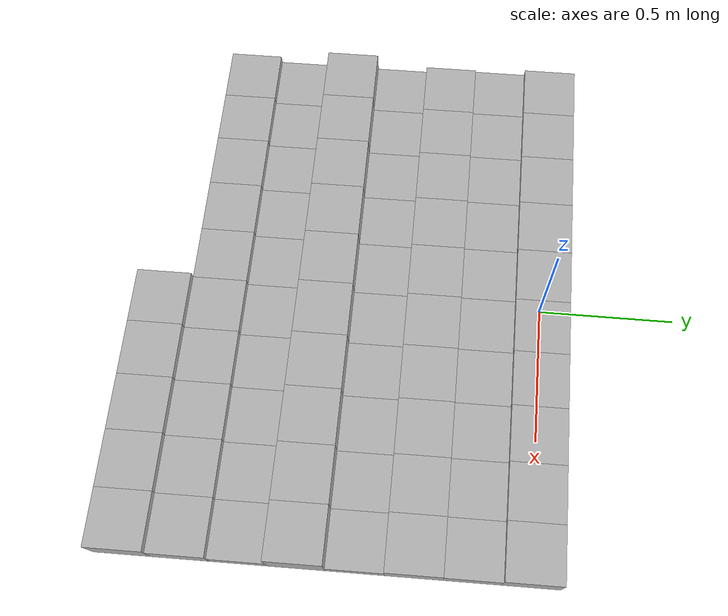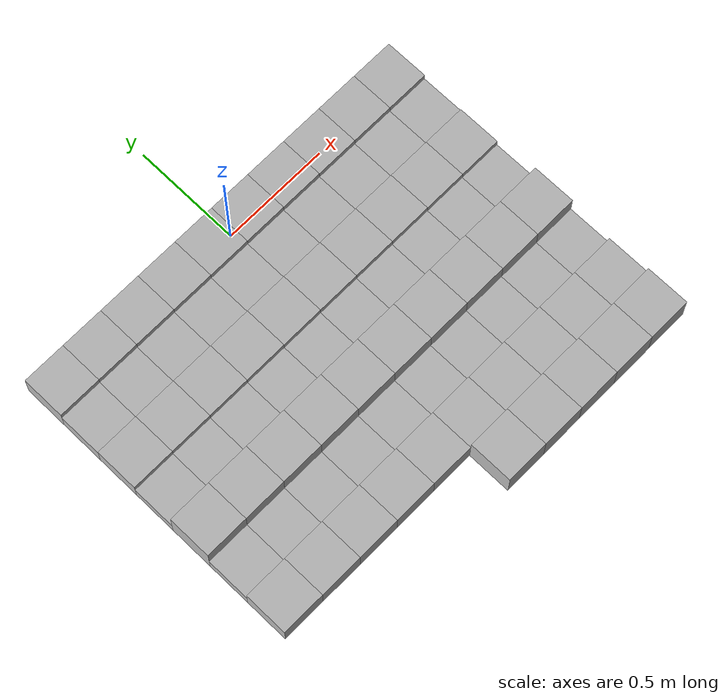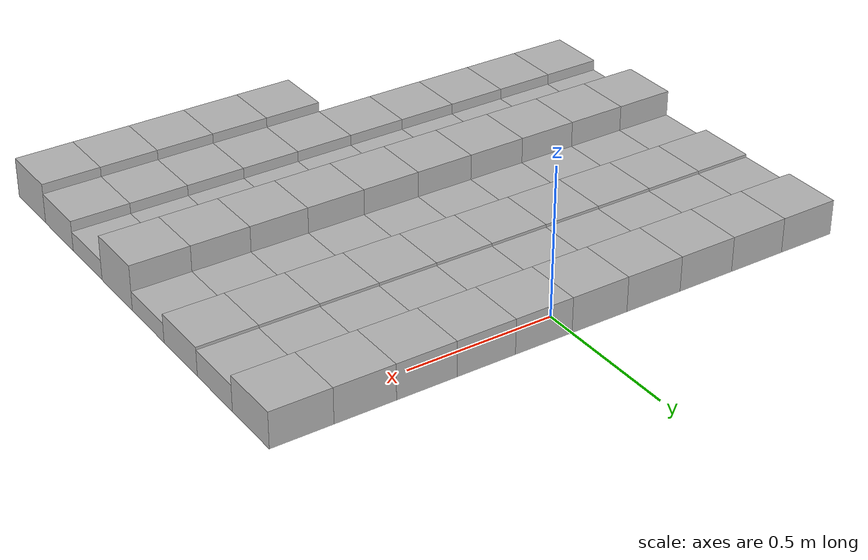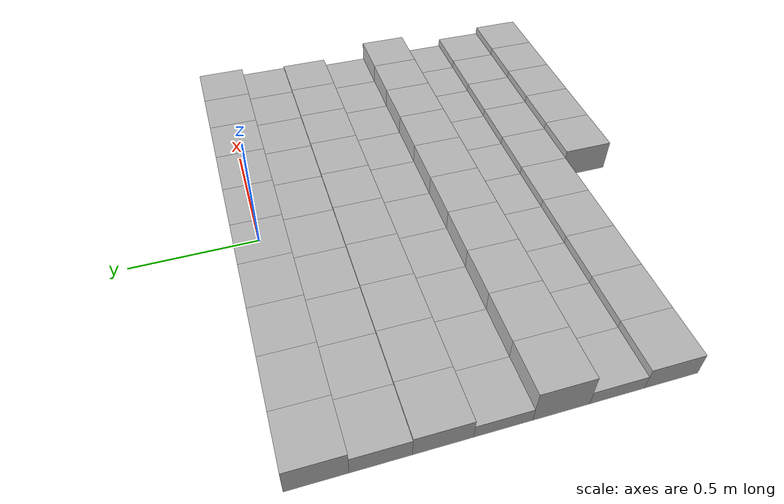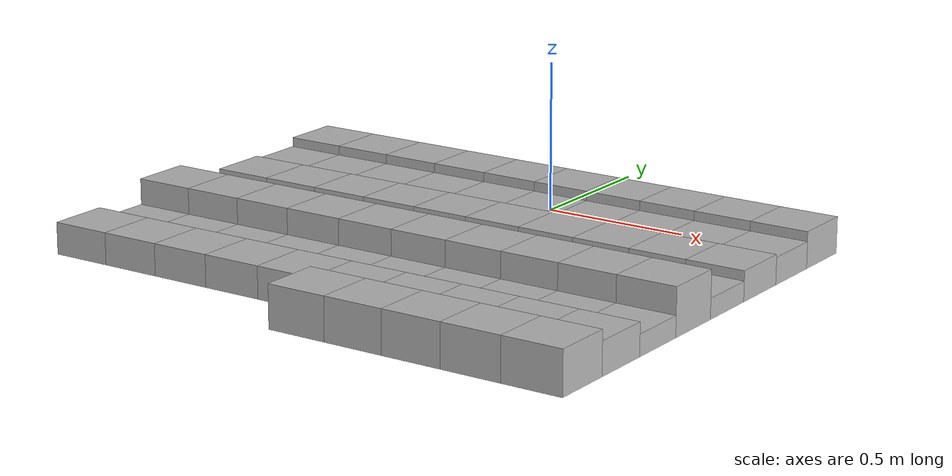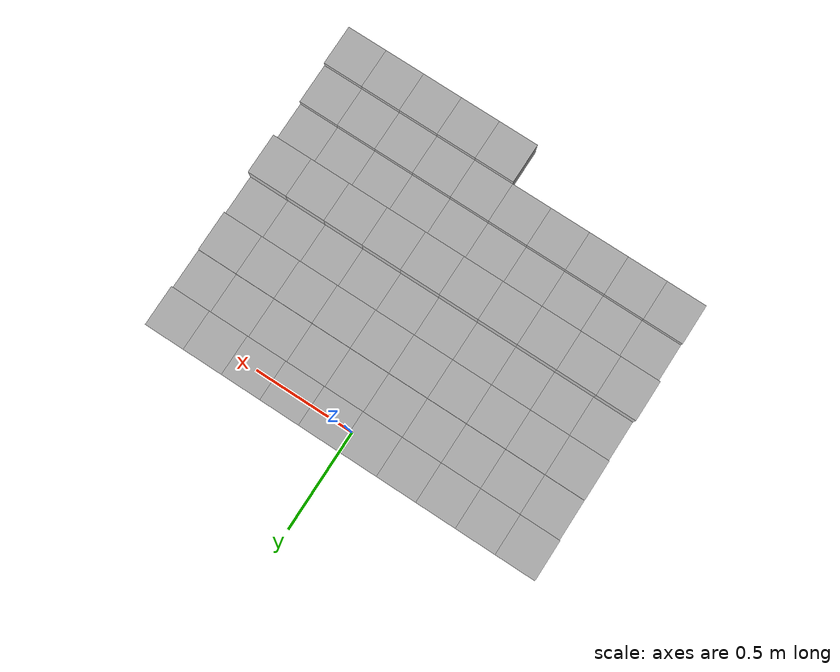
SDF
<sdf version="1.6">
 <model name="Terrain">
  <static>true</static>
  <link name="box_0_0">
   <pose>-0.9 0.0 0.0598560563841 0 0 0</pose>
   <inertial>
    <mass>1.0</mass>
    <inertia><ixx>0.0</ixx><ixy>0.0</ixy><ixz>0.0</ixz><iyy>0.0</iyy><iyz>0.0</iyz><izz>0.0</izz></inertia>
   </inertial>
   <collision name="collision"><geometry><box><size>0.2 0.2 0.119712112768</size></box></geometry></collision>
   <visual name="visual"><geometry><box><size>0.2 0.2 0.119712112768</size></box></geometry></visual>
  </link>
  <link name="box_0_1">
   <pose>-0.7 0.0 0.0598560563841 0 0 0</pose>
   <inertial>
    <mass>1.0</mass>
    <inertia><ixx>0.0</ixx><ixy>0.0</ixy><ixz>0.0</ixz><iyy>0.0</iyy><iyz>0.0</iyz><izz>0.0</izz></inertia>
   </inertial>
   <collision name="collision"><geometry><box><size>0.2 0.2 0.119712112768</size></box></geometry></collision>
   <visual name="visual"><geometry><box><size>0.2 0.2 0.119712112768</size></box></geometry></visual>
  </link>
  <link name="box_0_2">
   <pose>-0.5 0.0 0.0598560563841 0 0 0</pose>
   <inertial>
    <mass>1.0</mass>
    <inertia><ixx>0.0</ixx><ixy>0.0</ixy><ixz>0.0</ixz><iyy>0.0</iyy><iyz>0.0</iyz><izz>0.0</izz></inertia>
   </inertial>
   <collision name="collision"><geometry><box><size>0.2 0.2 0.119712112768</size></box></geometry></collision>
   <visual name="visual"><geometry><box><size>0.2 0.2 0.119712112768</size></box></geometry></visual>
  </link>
  <link name="box_0_3">
   <pose>-0.3 0.0 0.0598560563841 0 0 0</pose>
   <inertial>
    <mass>1.0</mass>
    <inertia><ixx>0.0</ixx><ixy>0.0</ixy><ixz>0.0</ixz><iyy>0.0</iyy><iyz>0.0</iyz><izz>0.0</izz></inertia>
   </inertial>
   <collision name="collision"><geometry><box><size>0.2 0.2 0.119712112768</size></box></geometry></collision>
   <visual name="visual"><geometry><box><size>0.2 0.2 0.119712112768</size></box></geometry></visual>
  </link>
  <link name="box_0_4">
   <pose>-0.1 0.0 0.0598560563841 0 0 0</pose>
   <inertial>
    <mass>1.0</mass>
    <inertia><ixx>0.0</ixx><ixy>0.0</ixy><ixz>0.0</ixz><iyy>0.0</iyy><iyz>0.0</iyz><izz>0.0</izz></inertia>
   </inertial>
   <collision name="collision"><geometry><box><size>0.2 0.2 0.119712112768</size></box></geometry></collision>
   <visual name="visual"><geometry><box><size>0.2 0.2 0.119712112768</size></box></geometry></visual>
  </link>
  <link name="box_0_5">
   <pose>0.1 0.0 0.0598560563841 0 0 0</pose>
   <inertial>
    <mass>1.0</mass>
    <inertia><ixx>0.0</ixx><ixy>0.0</ixy><ixz>0.0</ixz><iyy>0.0</iyy><iyz>0.0</iyz><izz>0.0</izz></inertia>
   </inertial>
   <collision name="collision"><geometry><box><size>0.2 0.2 0.119712112768</size></box></geometry></collision>
   <visual name="visual"><geometry><box><size>0.2 0.2 0.119712112768</size></box></geometry></visual>
  </link>
  <link name="box_0_6">
   <pose>0.3 0.0 0.0598560563841 0 0 0</pose>
   <inertial>
    <mass>1.0</mass>
    <inertia><ixx>0.0</ixx><ixy>0.0</ixy><ixz>0.0</ixz><iyy>0.0</iyy><iyz>0.0</iyz><izz>0.0</izz></inertia>
   </inertial>
   <collision name="collision"><geometry><box><size>0.2 0.2 0.119712112768</size></box></geometry></collision>
   <visual name="visual"><geometry><box><size>0.2 0.2 0.119712112768</size></box></geometry></visual>
  </link>
  <link name="box_0_7">
   <pose>0.5 0.0 0.0598560563841 0 0 0</pose>
   <inertial>
    <mass>1.0</mass>
    <inertia><ixx>0.0</ixx><ixy>0.0</ixy><ixz>0.0</ixz><iyy>0.0</iyy><iyz>0.0</iyz><izz>0.0</izz></inertia>
   </inertial>
   <collision name="collision"><geometry><box><size>0.2 0.2 0.119712112768</size></box></geometry></collision>
   <visual name="visual"><geometry><box><size>0.2 0.2 0.119712112768</size></box></geometry></visual>
  </link>
  <link name="box_0_8">
   <pose>0.7 0.0 0.0598560563841 0 0 0</pose>
   <inertial>
    <mass>1.0</mass>
    <inertia><ixx>0.0</ixx><ixy>0.0</ixy><ixz>0.0</ixz><iyy>0.0</iyy><iyz>0.0</iyz><izz>0.0</izz></inertia>
   </inertial>
   <collision name="collision"><geometry><box><size>0.2 0.2 0.119712112768</size></box></geometry></collision>
   <visual name="visual"><geometry><box><size>0.2 0.2 0.119712112768</size></box></geometry></visual>
  </link>
  <link name="box_0_9">
   <pose>0.9 0.0 0.0598560563841 0 0 0</pose>
   <inertial>
    <mass>1.0</mass>
    <inertia><ixx>0.0</ixx><ixy>0.0</ixy><ixz>0.0</ixz><iyy>0.0</iyy><iyz>0.0</iyz><izz>0.0</izz></inertia>
   </inertial>
   <collision name="collision"><geometry><box><size>0.2 0.2 0.119712112768</size></box></geometry></collision>
   <visual name="visual"><geometry><box><size>0.2 0.2 0.119712112768</size></box></geometry></visual>
  </link>
  <link name="box_1_0">
   <pose>-0.9 -0.2 0.0438637217113 0 0 0</pose>
   <inertial>
    <mass>1.0</mass>
    <inertia><ixx>0.0</ixx><ixy>0.0</ixy><ixz>0.0</ixz><iyy>0.0</iyy><iyz>0.0</iyz><izz>0.0</izz></inertia>
   </inertial>
   <collision name="collision"><geometry><box><size>0.2 0.2 0.0877274434227</size></box></geometry></collision>
   <visual name="visual"><geometry><box><size>0.2 0.2 0.0877274434227</size></box></geometry></visual>
  </link>
  <link name="box_1_1">
   <pose>-0.7 -0.2 0.0438637217113 0 0 0</pose>
   <inertial>
    <mass>1.0</mass>
    <inertia><ixx>0.0</ixx><ixy>0.0</ixy><ixz>0.0</ixz><iyy>0.0</iyy><iyz>0.0</iyz><izz>0.0</izz></inertia>
   </inertial>
   <collision name="collision"><geometry><box><size>0.2 0.2 0.0877274434227</size></box></geometry></collision>
   <visual name="visual"><geometry><box><size>0.2 0.2 0.0877274434227</size></box></geometry></visual>
  </link>
  <link name="box_1_2">
   <pose>-0.5 -0.2 0.0438637217113 0 0 0</pose>
   <inertial>
    <mass>1.0</mass>
    <inertia><ixx>0.0</ixx><ixy>0.0</ixy><ixz>0.0</ixz><iyy>0.0</iyy><iyz>0.0</iyz><izz>0.0</izz></inertia>
   </inertial>
   <collision name="collision"><geometry><box><size>0.2 0.2 0.0877274434227</size></box></geometry></collision>
   <visual name="visual"><geometry><box><size>0.2 0.2 0.0877274434227</size></box></geometry></visual>
  </link>
  <link name="box_1_3">
   <pose>-0.3 -0.2 0.0438637217113 0 0 0</pose>
   <inertial>
    <mass>1.0</mass>
    <inertia><ixx>0.0</ixx><ixy>0.0</ixy><ixz>0.0</ixz><iyy>0.0</iyy><iyz>0.0</iyz><izz>0.0</izz></inertia>
   </inertial>
   <collision name="collision"><geometry><box><size>0.2 0.2 0.0877274434227</size></box></geometry></collision>
   <visual name="visual"><geometry><box><size>0.2 0.2 0.0877274434227</size></box></geometry></visual>
  </link>
  <link name="box_1_4">
   <pose>-0.1 -0.2 0.0438637217113 0 0 0</pose>
   <inertial>
    <mass>1.0</mass>
    <inertia><ixx>0.0</ixx><ixy>0.0</ixy><ixz>0.0</ixz><iyy>0.0</iyy><iyz>0.0</iyz><izz>0.0</izz></inertia>
   </inertial>
   <collision name="collision"><geometry><box><size>0.2 0.2 0.0877274434227</size></box></geometry></collision>
   <visual name="visual"><geometry><box><size>0.2 0.2 0.0877274434227</size></box></geometry></visual>
  </link>
  <link name="box_1_5">
   <pose>0.1 -0.2 0.0438637217113 0 0 0</pose>
   <inertial>
    <mass>1.0</mass>
    <inertia><ixx>0.0</ixx><ixy>0.0</ixy><ixz>0.0</ixz><iyy>0.0</iyy><iyz>0.0</iyz><izz>0.0</izz></inertia>
   </inertial>
   <collision name="collision"><geometry><box><size>0.2 0.2 0.0877274434227</size></box></geometry></collision>
   <visual name="visual"><geometry><box><size>0.2 0.2 0.0877274434227</size></box></geometry></visual>
  </link>
  <link name="box_1_6">
   <pose>0.3 -0.2 0.0438637217113 0 0 0</pose>
   <inertial>
    <mass>1.0</mass>
    <inertia><ixx>0.0</ixx><ixy>0.0</ixy><ixz>0.0</ixz><iyy>0.0</iyy><iyz>0.0</iyz><izz>0.0</izz></inertia>
   </inertial>
   <collision name="collision"><geometry><box><size>0.2 0.2 0.0877274434227</size></box></geometry></collision>
   <visual name="visual"><geometry><box><size>0.2 0.2 0.0877274434227</size></box></geometry></visual>
  </link>
  <link name="box_1_7">
   <pose>0.5 -0.2 0.0438637217113 0 0 0</pose>
   <inertial>
    <mass>1.0</mass>
    <inertia><ixx>0.0</ixx><ixy>0.0</ixy><ixz>0.0</ixz><iyy>0.0</iyy><iyz>0.0</iyz><izz>0.0</izz></inertia>
   </inertial>
   <collision name="collision"><geometry><box><size>0.2 0.2 0.0877274434227</size></box></geometry></collision>
   <visual name="visual"><geometry><box><size>0.2 0.2 0.0877274434227</size></box></geometry></visual>
  </link>
  <link name="box_1_8">
   <pose>0.7 -0.2 0.0438637217113 0 0 0</pose>
   <inertial>
    <mass>1.0</mass>
    <inertia><ixx>0.0</ixx><ixy>0.0</ixy><ixz>0.0</ixz><iyy>0.0</iyy><iyz>0.0</iyz><izz>0.0</izz></inertia>
   </inertial>
   <collision name="collision"><geometry><box><size>0.2 0.2 0.0877274434227</size></box></geometry></collision>
   <visual name="visual"><geometry><box><size>0.2 0.2 0.0877274434227</size></box></geometry></visual>
  </link>
  <link name="box_1_9">
   <pose>0.9 -0.2 0.0438637217113 0 0 0</pose>
   <inertial>
    <mass>1.0</mass>
    <inertia><ixx>0.0</ixx><ixy>0.0</ixy><ixz>0.0</ixz><iyy>0.0</iyy><iyz>0.0</iyz><izz>0.0</izz></inertia>
   </inertial>
   <collision name="collision"><geometry><box><size>0.2 0.2 0.0877274434227</size></box></geometry></collision>
   <visual name="visual"><geometry><box><size>0.2 0.2 0.0877274434227</size></box></geometry></visual>
  </link>
  <link name="box_2_0">
   <pose>-0.9 -0.4 0.0486397680348 0 0 0</pose>
   <inertial>
    <mass>1.0</mass>
    <inertia><ixx>0.0</ixx><ixy>0.0</ixy><ixz>0.0</ixz><iyy>0.0</iyy><iyz>0.0</iyz><izz>0.0</izz></inertia>
   </inertial>
   <collision name="collision"><geometry><box><size>0.2 0.2 0.0972795360696</size></box></geometry></collision>
   <visual name="visual"><geometry><box><size>0.2 0.2 0.0972795360696</size></box></geometry></visual>
  </link>
  <link name="box_2_1">
   <pose>-0.7 -0.4 0.0486397680348 0 0 0</pose>
   <inertial>
    <mass>1.0</mass>
    <inertia><ixx>0.0</ixx><ixy>0.0</ixy><ixz>0.0</ixz><iyy>0.0</iyy><iyz>0.0</iyz><izz>0.0</izz></inertia>
   </inertial>
   <collision name="collision"><geometry><box><size>0.2 0.2 0.0972795360696</size></box></geometry></collision>
   <visual name="visual"><geometry><box><size>0.2 0.2 0.0972795360696</size></box></geometry></visual>
  </link>
  <link name="box_2_2">
   <pose>-0.5 -0.4 0.0486397680348 0 0 0</pose>
   <inertial>
    <mass>1.0</mass>
    <inertia><ixx>0.0</ixx><ixy>0.0</ixy><ixz>0.0</ixz><iyy>0.0</iyy><iyz>0.0</iyz><izz>0.0</izz></inertia>
   </inertial>
   <collision name="collision"><geometry><box><size>0.2 0.2 0.0972795360696</size></box></geometry></collision>
   <visual name="visual"><geometry><box><size>0.2 0.2 0.0972795360696</size></box></geometry></visual>
  </link>
  <link name="box_2_3">
   <pose>-0.3 -0.4 0.0486397680348 0 0 0</pose>
   <inertial>
    <mass>1.0</mass>
    <inertia><ixx>0.0</ixx><ixy>0.0</ixy><ixz>0.0</ixz><iyy>0.0</iyy><iyz>0.0</iyz><izz>0.0</izz></inertia>
   </inertial>
   <collision name="collision"><geometry><box><size>0.2 0.2 0.0972795360696</size></box></geometry></collision>
   <visual name="visual"><geometry><box><size>0.2 0.2 0.0972795360696</size></box></geometry></visual>
  </link>
  <link name="box_2_4">
   <pose>-0.1 -0.4 0.0486397680348 0 0 0</pose>
   <inertial>
    <mass>1.0</mass>
    <inertia><ixx>0.0</ixx><ixy>0.0</ixy><ixz>0.0</ixz><iyy>0.0</iyy><iyz>0.0</iyz><izz>0.0</izz></inertia>
   </inertial>
   <collision name="collision"><geometry><box><size>0.2 0.2 0.0972795360696</size></box></geometry></collision>
   <visual name="visual"><geometry><box><size>0.2 0.2 0.0972795360696</size></box></geometry></visual>
  </link>
  <link name="box_2_5">
   <pose>0.1 -0.4 0.0486397680348 0 0 0</pose>
   <inertial>
    <mass>1.0</mass>
    <inertia><ixx>0.0</ixx><ixy>0.0</ixy><ixz>0.0</ixz><iyy>0.0</iyy><iyz>0.0</iyz><izz>0.0</izz></inertia>
   </inertial>
   <collision name="collision"><geometry><box><size>0.2 0.2 0.0972795360696</size></box></geometry></collision>
   <visual name="visual"><geometry><box><size>0.2 0.2 0.0972795360696</size></box></geometry></visual>
  </link>
  <link name="box_2_6">
   <pose>0.3 -0.4 0.0486397680348 0 0 0</pose>
   <inertial>
    <mass>1.0</mass>
    <inertia><ixx>0.0</ixx><ixy>0.0</ixy><ixz>0.0</ixz><iyy>0.0</iyy><iyz>0.0</iyz><izz>0.0</izz></inertia>
   </inertial>
   <collision name="collision"><geometry><box><size>0.2 0.2 0.0972795360696</size></box></geometry></collision>
   <visual name="visual"><geometry><box><size>0.2 0.2 0.0972795360696</size></box></geometry></visual>
  </link>
  <link name="box_2_7">
   <pose>0.5 -0.4 0.0486397680348 0 0 0</pose>
   <inertial>
    <mass>1.0</mass>
    <inertia><ixx>0.0</ixx><ixy>0.0</ixy><ixz>0.0</ixz><iyy>0.0</iyy><iyz>0.0</iyz><izz>0.0</izz></inertia>
   </inertial>
   <collision name="collision"><geometry><box><size>0.2 0.2 0.0972795360696</size></box></geometry></collision>
   <visual name="visual"><geometry><box><size>0.2 0.2 0.0972795360696</size></box></geometry></visual>
  </link>
  <link name="box_2_8">
   <pose>0.7 -0.4 0.0486397680348 0 0 0</pose>
   <inertial>
    <mass>1.0</mass>
    <inertia><ixx>0.0</ixx><ixy>0.0</ixy><ixz>0.0</ixz><iyy>0.0</iyy><iyz>0.0</iyz><izz>0.0</izz></inertia>
   </inertial>
   <collision name="collision"><geometry><box><size>0.2 0.2 0.0972795360696</size></box></geometry></collision>
   <visual name="visual"><geometry><box><size>0.2 0.2 0.0972795360696</size></box></geometry></visual>
  </link>
  <link name="box_2_9">
   <pose>0.9 -0.4 0.0486397680348 0 0 0</pose>
   <inertial>
    <mass>1.0</mass>
    <inertia><ixx>0.0</ixx><ixy>0.0</ixy><ixz>0.0</ixz><iyy>0.0</iyy><iyz>0.0</iyz><izz>0.0</izz></inertia>
   </inertial>
   <collision name="collision"><geometry><box><size>0.2 0.2 0.0972795360696</size></box></geometry></collision>
   <visual name="visual"><geometry><box><size>0.2 0.2 0.0972795360696</size></box></geometry></visual>
  </link>
  <link name="box_3_0">
   <pose>-0.9 -0.6 0.0326591432274 0 0 0</pose>
   <inertial>
    <mass>1.0</mass>
    <inertia><ixx>0.0</ixx><ixy>0.0</ixy><ixz>0.0</ixz><iyy>0.0</iyy><iyz>0.0</iyz><izz>0.0</izz></inertia>
   </inertial>
   <collision name="collision"><geometry><box><size>0.2 0.2 0.0653182864547</size></box></geometry></collision>
   <visual name="visual"><geometry><box><size>0.2 0.2 0.0653182864547</size></box></geometry></visual>
  </link>
  <link name="box_3_1">
   <pose>-0.7 -0.6 0.0326591432274 0 0 0</pose>
   <inertial>
    <mass>1.0</mass>
    <inertia><ixx>0.0</ixx><ixy>0.0</ixy><ixz>0.0</ixz><iyy>0.0</iyy><iyz>0.0</iyz><izz>0.0</izz></inertia>
   </inertial>
   <collision name="collision"><geometry><box><size>0.2 0.2 0.0653182864547</size></box></geometry></collision>
   <visual name="visual"><geometry><box><size>0.2 0.2 0.0653182864547</size></box></geometry></visual>
  </link>
  <link name="box_3_2">
   <pose>-0.5 -0.6 0.0326591432274 0 0 0</pose>
   <inertial>
    <mass>1.0</mass>
    <inertia><ixx>0.0</ixx><ixy>0.0</ixy><ixz>0.0</ixz><iyy>0.0</iyy><iyz>0.0</iyz><izz>0.0</izz></inertia>
   </inertial>
   <collision name="collision"><geometry><box><size>0.2 0.2 0.0653182864547</size></box></geometry></collision>
   <visual name="visual"><geometry><box><size>0.2 0.2 0.0653182864547</size></box></geometry></visual>
  </link>
  <link name="box_3_3">
   <pose>-0.3 -0.6 0.0326591432274 0 0 0</pose>
   <inertial>
    <mass>1.0</mass>
    <inertia><ixx>0.0</ixx><ixy>0.0</ixy><ixz>0.0</ixz><iyy>0.0</iyy><iyz>0.0</iyz><izz>0.0</izz></inertia>
   </inertial>
   <collision name="collision"><geometry><box><size>0.2 0.2 0.0653182864547</size></box></geometry></collision>
   <visual name="visual"><geometry><box><size>0.2 0.2 0.0653182864547</size></box></geometry></visual>
  </link>
  <link name="box_3_4">
   <pose>-0.1 -0.6 0.0326591432274 0 0 0</pose>
   <inertial>
    <mass>1.0</mass>
    <inertia><ixx>0.0</ixx><ixy>0.0</ixy><ixz>0.0</ixz><iyy>0.0</iyy><iyz>0.0</iyz><izz>0.0</izz></inertia>
   </inertial>
   <collision name="collision"><geometry><box><size>0.2 0.2 0.0653182864547</size></box></geometry></collision>
   <visual name="visual"><geometry><box><size>0.2 0.2 0.0653182864547</size></box></geometry></visual>
  </link>
  <link name="box_3_5">
   <pose>0.1 -0.6 0.0326591432274 0 0 0</pose>
   <inertial>
    <mass>1.0</mass>
    <inertia><ixx>0.0</ixx><ixy>0.0</ixy><ixz>0.0</ixz><iyy>0.0</iyy><iyz>0.0</iyz><izz>0.0</izz></inertia>
   </inertial>
   <collision name="collision"><geometry><box><size>0.2 0.2 0.0653182864547</size></box></geometry></collision>
   <visual name="visual"><geometry><box><size>0.2 0.2 0.0653182864547</size></box></geometry></visual>
  </link>
  <link name="box_3_6">
   <pose>0.3 -0.6 0.0326591432274 0 0 0</pose>
   <inertial>
    <mass>1.0</mass>
    <inertia><ixx>0.0</ixx><ixy>0.0</ixy><ixz>0.0</ixz><iyy>0.0</iyy><iyz>0.0</iyz><izz>0.0</izz></inertia>
   </inertial>
   <collision name="collision"><geometry><box><size>0.2 0.2 0.0653182864547</size></box></geometry></collision>
   <visual name="visual"><geometry><box><size>0.2 0.2 0.0653182864547</size></box></geometry></visual>
  </link>
  <link name="box_3_7">
   <pose>0.5 -0.6 0.0326591432274 0 0 0</pose>
   <inertial>
    <mass>1.0</mass>
    <inertia><ixx>0.0</ixx><ixy>0.0</ixy><ixz>0.0</ixz><iyy>0.0</iyy><iyz>0.0</iyz><izz>0.0</izz></inertia>
   </inertial>
   <collision name="collision"><geometry><box><size>0.2 0.2 0.0653182864547</size></box></geometry></collision>
   <visual name="visual"><geometry><box><size>0.2 0.2 0.0653182864547</size></box></geometry></visual>
  </link>
  <link name="box_3_8">
   <pose>0.7 -0.6 0.0326591432274 0 0 0</pose>
   <inertial>
    <mass>1.0</mass>
    <inertia><ixx>0.0</ixx><ixy>0.0</ixy><ixz>0.0</ixz><iyy>0.0</iyy><iyz>0.0</iyz><izz>0.0</izz></inertia>
   </inertial>
   <collision name="collision"><geometry><box><size>0.2 0.2 0.0653182864547</size></box></geometry></collision>
   <visual name="visual"><geometry><box><size>0.2 0.2 0.0653182864547</size></box></geometry></visual>
  </link>
  <link name="box_3_9">
   <pose>0.9 -0.6 0.0326591432274 0 0 0</pose>
   <inertial>
    <mass>1.0</mass>
    <inertia><ixx>0.0</ixx><ixy>0.0</ixy><ixz>0.0</ixz><iyy>0.0</iyy><iyz>0.0</iyz><izz>0.0</izz></inertia>
   </inertial>
   <collision name="collision"><geometry><box><size>0.2 0.2 0.0653182864547</size></box></geometry></collision>
   <visual name="visual"><geometry><box><size>0.2 0.2 0.0653182864547</size></box></geometry></visual>
  </link>
  <link name="box_4_0">
   <pose>-0.9 -0.8 0.0769025275084 0 0 0</pose>
   <inertial>
    <mass>1.0</mass>
    <inertia><ixx>0.0</ixx><ixy>0.0</ixy><ixz>0.0</ixz><iyy>0.0</iyy><iyz>0.0</iyz><izz>0.0</izz></inertia>
   </inertial>
   <collision name="collision"><geometry><box><size>0.2 0.2 0.153805055017</size></box></geometry></collision>
   <visual name="visual"><geometry><box><size>0.2 0.2 0.153805055017</size></box></geometry></visual>
  </link>
  <link name="box_4_1">
   <pose>-0.7 -0.8 0.0769025275084 0 0 0</pose>
   <inertial>
    <mass>1.0</mass>
    <inertia><ixx>0.0</ixx><ixy>0.0</ixy><ixz>0.0</ixz><iyy>0.0</iyy><iyz>0.0</iyz><izz>0.0</izz></inertia>
   </inertial>
   <collision name="collision"><geometry><box><size>0.2 0.2 0.153805055017</size></box></geometry></collision>
   <visual name="visual"><geometry><box><size>0.2 0.2 0.153805055017</size></box></geometry></visual>
  </link>
  <link name="box_4_2">
   <pose>-0.5 -0.8 0.0769025275084 0 0 0</pose>
   <inertial>
    <mass>1.0</mass>
    <inertia><ixx>0.0</ixx><ixy>0.0</ixy><ixz>0.0</ixz><iyy>0.0</iyy><iyz>0.0</iyz><izz>0.0</izz></inertia>
   </inertial>
   <collision name="collision"><geometry><box><size>0.2 0.2 0.153805055017</size></box></geometry></collision>
   <visual name="visual"><geometry><box><size>0.2 0.2 0.153805055017</size></box></geometry></visual>
  </link>
  <link name="box_4_3">
   <pose>-0.3 -0.8 0.0769025275084 0 0 0</pose>
   <inertial>
    <mass>1.0</mass>
    <inertia><ixx>0.0</ixx><ixy>0.0</ixy><ixz>0.0</ixz><iyy>0.0</iyy><iyz>0.0</iyz><izz>0.0</izz></inertia>
   </inertial>
   <collision name="collision"><geometry><box><size>0.2 0.2 0.153805055017</size></box></geometry></collision>
   <visual name="visual"><geometry><box><size>0.2 0.2 0.153805055017</size></box></geometry></visual>
  </link>
  <link name="box_4_4">
   <pose>-0.1 -0.8 0.0769025275084 0 0 0</pose>
   <inertial>
    <mass>1.0</mass>
    <inertia><ixx>0.0</ixx><ixy>0.0</ixy><ixz>0.0</ixz><iyy>0.0</iyy><iyz>0.0</iyz><izz>0.0</izz></inertia>
   </inertial>
   <collision name="collision"><geometry><box><size>0.2 0.2 0.153805055017</size></box></geometry></collision>
   <visual name="visual"><geometry><box><size>0.2 0.2 0.153805055017</size></box></geometry></visual>
  </link>
  <link name="box_4_5">
   <pose>0.1 -0.8 0.0769025275084 0 0 0</pose>
   <inertial>
    <mass>1.0</mass>
    <inertia><ixx>0.0</ixx><ixy>0.0</ixy><ixz>0.0</ixz><iyy>0.0</iyy><iyz>0.0</iyz><izz>0.0</izz></inertia>
   </inertial>
   <collision name="collision"><geometry><box><size>0.2 0.2 0.153805055017</size></box></geometry></collision>
   <visual name="visual"><geometry><box><size>0.2 0.2 0.153805055017</size></box></geometry></visual>
  </link>
  <link name="box_4_6">
   <pose>0.3 -0.8 0.0769025275084 0 0 0</pose>
   <inertial>
    <mass>1.0</mass>
    <inertia><ixx>0.0</ixx><ixy>0.0</ixy><ixz>0.0</ixz><iyy>0.0</iyy><iyz>0.0</iyz><izz>0.0</izz></inertia>
   </inertial>
   <collision name="collision"><geometry><box><size>0.2 0.2 0.153805055017</size></box></geometry></collision>
   <visual name="visual"><geometry><box><size>0.2 0.2 0.153805055017</size></box></geometry></visual>
  </link>
  <link name="box_4_7">
   <pose>0.5 -0.8 0.0769025275084 0 0 0</pose>
   <inertial>
    <mass>1.0</mass>
    <inertia><ixx>0.0</ixx><ixy>0.0</ixy><ixz>0.0</ixz><iyy>0.0</iyy><iyz>0.0</iyz><izz>0.0</izz></inertia>
   </inertial>
   <collision name="collision"><geometry><box><size>0.2 0.2 0.153805055017</size></box></geometry></collision>
   <visual name="visual"><geometry><box><size>0.2 0.2 0.153805055017</size></box></geometry></visual>
  </link>
  <link name="box_4_8">
   <pose>0.7 -0.8 0.0769025275084 0 0 0</pose>
   <inertial>
    <mass>1.0</mass>
    <inertia><ixx>0.0</ixx><ixy>0.0</ixy><ixz>0.0</ixz><iyy>0.0</iyy><iyz>0.0</iyz><izz>0.0</izz></inertia>
   </inertial>
   <collision name="collision"><geometry><box><size>0.2 0.2 0.153805055017</size></box></geometry></collision>
   <visual name="visual"><geometry><box><size>0.2 0.2 0.153805055017</size></box></geometry></visual>
  </link>
  <link name="box_4_9">
   <pose>0.9 -0.8 0.0769025275084 0 0 0</pose>
   <inertial>
    <mass>1.0</mass>
    <inertia><ixx>0.0</ixx><ixy>0.0</ixy><ixz>0.0</ixz><iyy>0.0</iyy><iyz>0.0</iyz><izz>0.0</izz></inertia>
   </inertial>
   <collision name="collision"><geometry><box><size>0.2 0.2 0.153805055017</size></box></geometry></collision>
   <visual name="visual"><geometry><box><size>0.2 0.2 0.153805055017</size></box></geometry></visual>
  </link>
  <link name="box_5_0">
   <pose>-0.9 -1.0 0.0338521231126 0 0 0</pose>
   <inertial>
    <mass>1.0</mass>
    <inertia><ixx>0.0</ixx><ixy>0.0</ixy><ixz>0.0</ixz><iyy>0.0</iyy><iyz>0.0</iyz><izz>0.0</izz></inertia>
   </inertial>
   <collision name="collision"><geometry><box><size>0.2 0.2 0.0677042462252</size></box></geometry></collision>
   <visual name="visual"><geometry><box><size>0.2 0.2 0.0677042462252</size></box></geometry></visual>
  </link>
  <link name="box_5_1">
   <pose>-0.7 -1.0 0.0338521231126 0 0 0</pose>
   <inertial>
    <mass>1.0</mass>
    <inertia><ixx>0.0</ixx><ixy>0.0</ixy><ixz>0.0</ixz><iyy>0.0</iyy><iyz>0.0</iyz><izz>0.0</izz></inertia>
   </inertial>
   <collision name="collision"><geometry><box><size>0.2 0.2 0.0677042462252</size></box></geometry></collision>
   <visual name="visual"><geometry><box><size>0.2 0.2 0.0677042462252</size></box></geometry></visual>
  </link>
  <link name="box_5_2">
   <pose>-0.5 -1.0 0.0338521231126 0 0 0</pose>
   <inertial>
    <mass>1.0</mass>
    <inertia><ixx>0.0</ixx><ixy>0.0</ixy><ixz>0.0</ixz><iyy>0.0</iyy><iyz>0.0</iyz><izz>0.0</izz></inertia>
   </inertial>
   <collision name="collision"><geometry><box><size>0.2 0.2 0.0677042462252</size></box></geometry></collision>
   <visual name="visual"><geometry><box><size>0.2 0.2 0.0677042462252</size></box></geometry></visual>
  </link>
  <link name="box_5_3">
   <pose>-0.3 -1.0 0.0338521231126 0 0 0</pose>
   <inertial>
    <mass>1.0</mass>
    <inertia><ixx>0.0</ixx><ixy>0.0</ixy><ixz>0.0</ixz><iyy>0.0</iyy><iyz>0.0</iyz><izz>0.0</izz></inertia>
   </inertial>
   <collision name="collision"><geometry><box><size>0.2 0.2 0.0677042462252</size></box></geometry></collision>
   <visual name="visual"><geometry><box><size>0.2 0.2 0.0677042462252</size></box></geometry></visual>
  </link>
  <link name="box_5_4">
   <pose>-0.1 -1.0 0.0338521231126 0 0 0</pose>
   <inertial>
    <mass>1.0</mass>
    <inertia><ixx>0.0</ixx><ixy>0.0</ixy><ixz>0.0</ixz><iyy>0.0</iyy><iyz>0.0</iyz><izz>0.0</izz></inertia>
   </inertial>
   <collision name="collision"><geometry><box><size>0.2 0.2 0.0677042462252</size></box></geometry></collision>
   <visual name="visual"><geometry><box><size>0.2 0.2 0.0677042462252</size></box></geometry></visual>
  </link>
  <link name="box_5_5">
   <pose>0.1 -1.0 0.0338521231126 0 0 0</pose>
   <inertial>
    <mass>1.0</mass>
    <inertia><ixx>0.0</ixx><ixy>0.0</ixy><ixz>0.0</ixz><iyy>0.0</iyy><iyz>0.0</iyz><izz>0.0</izz></inertia>
   </inertial>
   <collision name="collision"><geometry><box><size>0.2 0.2 0.0677042462252</size></box></geometry></collision>
   <visual name="visual"><geometry><box><size>0.2 0.2 0.0677042462252</size></box></geometry></visual>
  </link>
  <link name="box_5_6">
   <pose>0.3 -1.0 0.0338521231126 0 0 0</pose>
   <inertial>
    <mass>1.0</mass>
    <inertia><ixx>0.0</ixx><ixy>0.0</ixy><ixz>0.0</ixz><iyy>0.0</iyy><iyz>0.0</iyz><izz>0.0</izz></inertia>
   </inertial>
   <collision name="collision"><geometry><box><size>0.2 0.2 0.0677042462252</size></box></geometry></collision>
   <visual name="visual"><geometry><box><size>0.2 0.2 0.0677042462252</size></box></geometry></visual>
  </link>
  <link name="box_5_7">
   <pose>0.5 -1.0 0.0338521231126 0 0 0</pose>
   <inertial>
    <mass>1.0</mass>
    <inertia><ixx>0.0</ixx><ixy>0.0</ixy><ixz>0.0</ixz><iyy>0.0</iyy><iyz>0.0</iyz><izz>0.0</izz></inertia>
   </inertial>
   <collision name="collision"><geometry><box><size>0.2 0.2 0.0677042462252</size></box></geometry></collision>
   <visual name="visual"><geometry><box><size>0.2 0.2 0.0677042462252</size></box></geometry></visual>
  </link>
  <link name="box_5_8">
   <pose>0.7 -1.0 0.0338521231126 0 0 0</pose>
   <inertial>
    <mass>1.0</mass>
    <inertia><ixx>0.0</ixx><ixy>0.0</ixy><ixz>0.0</ixz><iyy>0.0</iyy><iyz>0.0</iyz><izz>0.0</izz></inertia>
   </inertial>
   <collision name="collision"><geometry><box><size>0.2 0.2 0.0677042462252</size></box></geometry></collision>
   <visual name="visual"><geometry><box><size>0.2 0.2 0.0677042462252</size></box></geometry></visual>
  </link>
  <link name="box_5_9">
   <pose>0.9 -1.0 0.0338521231126 0 0 0</pose>
   <inertial>
    <mass>1.0</mass>
    <inertia><ixx>0.0</ixx><ixy>0.0</ixy><ixz>0.0</ixz><iyy>0.0</iyy><iyz>0.0</iyz><izz>0.0</izz></inertia>
   </inertial>
   <collision name="collision"><geometry><box><size>0.2 0.2 0.0677042462252</size></box></geometry></collision>
   <visual name="visual"><geometry><box><size>0.2 0.2 0.0677042462252</size></box></geometry></visual>
  </link>
  <link name="box_6_0">
   <pose>-0.9 -1.2 0.0521194486497 0 0 0</pose>
   <inertial>
    <mass>1.0</mass>
    <inertia><ixx>0.0</ixx><ixy>0.0</ixy><ixz>0.0</ixz><iyy>0.0</iyy><iyz>0.0</iyz><izz>0.0</izz></inertia>
   </inertial>
   <collision name="collision"><geometry><box><size>0.2 0.2 0.104238897299</size></box></geometry></collision>
   <visual name="visual"><geometry><box><size>0.2 0.2 0.104238897299</size></box></geometry></visual>
  </link>
  <link name="box_6_1">
   <pose>-0.7 -1.2 0.0521194486497 0 0 0</pose>
   <inertial>
    <mass>1.0</mass>
    <inertia><ixx>0.0</ixx><ixy>0.0</ixy><ixz>0.0</ixz><iyy>0.0</iyy><iyz>0.0</iyz><izz>0.0</izz></inertia>
   </inertial>
   <collision name="collision"><geometry><box><size>0.2 0.2 0.104238897299</size></box></geometry></collision>
   <visual name="visual"><geometry><box><size>0.2 0.2 0.104238897299</size></box></geometry></visual>
  </link>
  <link name="box_6_2">
   <pose>-0.5 -1.2 0.0521194486497 0 0 0</pose>
   <inertial>
    <mass>1.0</mass>
    <inertia><ixx>0.0</ixx><ixy>0.0</ixy><ixz>0.0</ixz><iyy>0.0</iyy><iyz>0.0</iyz><izz>0.0</izz></inertia>
   </inertial>
   <collision name="collision"><geometry><box><size>0.2 0.2 0.104238897299</size></box></geometry></collision>
   <visual name="visual"><geometry><box><size>0.2 0.2 0.104238897299</size></box></geometry></visual>
  </link>
  <link name="box_6_3">
   <pose>-0.3 -1.2 0.0521194486497 0 0 0</pose>
   <inertial>
    <mass>1.0</mass>
    <inertia><ixx>0.0</ixx><ixy>0.0</ixy><ixz>0.0</ixz><iyy>0.0</iyy><iyz>0.0</iyz><izz>0.0</izz></inertia>
   </inertial>
   <collision name="collision"><geometry><box><size>0.2 0.2 0.104238897299</size></box></geometry></collision>
   <visual name="visual"><geometry><box><size>0.2 0.2 0.104238897299</size></box></geometry></visual>
  </link>
  <link name="box_6_4">
   <pose>-0.1 -1.2 0.0521194486497 0 0 0</pose>
   <inertial>
    <mass>1.0</mass>
    <inertia><ixx>0.0</ixx><ixy>0.0</ixy><ixz>0.0</ixz><iyy>0.0</iyy><iyz>0.0</iyz><izz>0.0</izz></inertia>
   </inertial>
   <collision name="collision"><geometry><box><size>0.2 0.2 0.104238897299</size></box></geometry></collision>
   <visual name="visual"><geometry><box><size>0.2 0.2 0.104238897299</size></box></geometry></visual>
  </link>
  <link name="box_6_5">
   <pose>0.1 -1.2 0.0521194486497 0 0 0</pose>
   <inertial>
    <mass>1.0</mass>
    <inertia><ixx>0.0</ixx><ixy>0.0</ixy><ixz>0.0</ixz><iyy>0.0</iyy><iyz>0.0</iyz><izz>0.0</izz></inertia>
   </inertial>
   <collision name="collision"><geometry><box><size>0.2 0.2 0.104238897299</size></box></geometry></collision>
   <visual name="visual"><geometry><box><size>0.2 0.2 0.104238897299</size></box></geometry></visual>
  </link>
  <link name="box_6_6">
   <pose>0.3 -1.2 0.0521194486497 0 0 0</pose>
   <inertial>
    <mass>1.0</mass>
    <inertia><ixx>0.0</ixx><ixy>0.0</ixy><ixz>0.0</ixz><iyy>0.0</iyy><iyz>0.0</iyz><izz>0.0</izz></inertia>
   </inertial>
   <collision name="collision"><geometry><box><size>0.2 0.2 0.104238897299</size></box></geometry></collision>
   <visual name="visual"><geometry><box><size>0.2 0.2 0.104238897299</size></box></geometry></visual>
  </link>
  <link name="box_6_7">
   <pose>0.5 -1.2 0.0521194486497 0 0 0</pose>
   <inertial>
    <mass>1.0</mass>
    <inertia><ixx>0.0</ixx><ixy>0.0</ixy><ixz>0.0</ixz><iyy>0.0</iyy><iyz>0.0</iyz><izz>0.0</izz></inertia>
   </inertial>
   <collision name="collision"><geometry><box><size>0.2 0.2 0.104238897299</size></box></geometry></collision>
   <visual name="visual"><geometry><box><size>0.2 0.2 0.104238897299</size></box></geometry></visual>
  </link>
  <link name="box_6_8">
   <pose>0.7 -1.2 0.0521194486497 0 0 0</pose>
   <inertial>
    <mass>1.0</mass>
    <inertia><ixx>0.0</ixx><ixy>0.0</ixy><ixz>0.0</ixz><iyy>0.0</iyy><iyz>0.0</iyz><izz>0.0</izz></inertia>
   </inertial>
   <collision name="collision"><geometry><box><size>0.2 0.2 0.104238897299</size></box></geometry></collision>
   <visual name="visual"><geometry><box><size>0.2 0.2 0.104238897299</size></box></geometry></visual>
  </link>
  <link name="box_6_9">
   <pose>0.9 -1.2 0.0521194486497 0 0 0</pose>
   <inertial>
    <mass>1.0</mass>
    <inertia><ixx>0.0</ixx><ixy>0.0</ixy><ixz>0.0</ixz><iyy>0.0</iyy><iyz>0.0</iyz><izz>0.0</izz></inertia>
   </inertial>
   <collision name="collision"><geometry><box><size>0.2 0.2 0.104238897299</size></box></geometry></collision>
   <visual name="visual"><geometry><box><size>0.2 0.2 0.104238897299</size></box></geometry></visual>
  </link>
  <link name="box_7_5">
   <pose>0.1 -1.4 0.0691178265774 0 0 0</pose>
   <inertial>
    <mass>1.0</mass>
    <inertia><ixx>0.0</ixx><ixy>0.0</ixy><ixz>0.0</ixz><iyy>0.0</iyy><iyz>0.0</iyz><izz>0.0</izz></inertia>
   </inertial>
   <collision name="collision"><geometry><box><size>0.2 0.2 0.138235653155</size></box></geometry></collision>
   <visual name="visual"><geometry><box><size>0.2 0.2 0.138235653155</size></box></geometry></visual>
  </link>
  <link name="box_7_6">
   <pose>0.3 -1.4 0.0691178265774 0 0 0</pose>
   <inertial>
    <mass>1.0</mass>
    <inertia><ixx>0.0</ixx><ixy>0.0</ixy><ixz>0.0</ixz><iyy>0.0</iyy><iyz>0.0</iyz><izz>0.0</izz></inertia>
   </inertial>
   <collision name="collision"><geometry><box><size>0.2 0.2 0.138235653155</size></box></geometry></collision>
   <visual name="visual"><geometry><box><size>0.2 0.2 0.138235653155</size></box></geometry></visual>
  </link>
  <link name="box_7_7">
   <pose>0.5 -1.4 0.0691178265774 0 0 0</pose>
   <inertial>
    <mass>1.0</mass>
    <inertia><ixx>0.0</ixx><ixy>0.0</ixy><ixz>0.0</ixz><iyy>0.0</iyy><iyz>0.0</iyz><izz>0.0</izz></inertia>
   </inertial>
   <collision name="collision"><geometry><box><size>0.2 0.2 0.138235653155</size></box></geometry></collision>
   <visual name="visual"><geometry><box><size>0.2 0.2 0.138235653155</size></box></geometry></visual>
  </link>
  <link name="box_7_8">
   <pose>0.7 -1.4 0.0691178265774 0 0 0</pose>
   <inertial>
    <mass>1.0</mass>
    <inertia><ixx>0.0</ixx><ixy>0.0</ixy><ixz>0.0</ixz><iyy>0.0</iyy><iyz>0.0</iyz><izz>0.0</izz></inertia>
   </inertial>
   <collision name="collision"><geometry><box><size>0.2 0.2 0.138235653155</size></box></geometry></collision>
   <visual name="visual"><geometry><box><size>0.2 0.2 0.138235653155</size></box></geometry></visual>
  </link>
  <link name="box_7_9">
   <pose>0.9 -1.4 0.0691178265774 0 0 0</pose>
   <inertial>
    <mass>1.0</mass>
    <inertia><ixx>0.0</ixx><ixy>0.0</ixy><ixz>0.0</ixz><iyy>0.0</iyy><iyz>0.0</iyz><izz>0.0</izz></inertia>
   </inertial>
   <collision name="collision"><geometry><box><size>0.2 0.2 0.138235653155</size></box></geometry></collision>
   <visual name="visual"><geometry><box><size>0.2 0.2 0.138235653155</size></box></geometry></visual>
  </link>
 </model>
</sdf>
